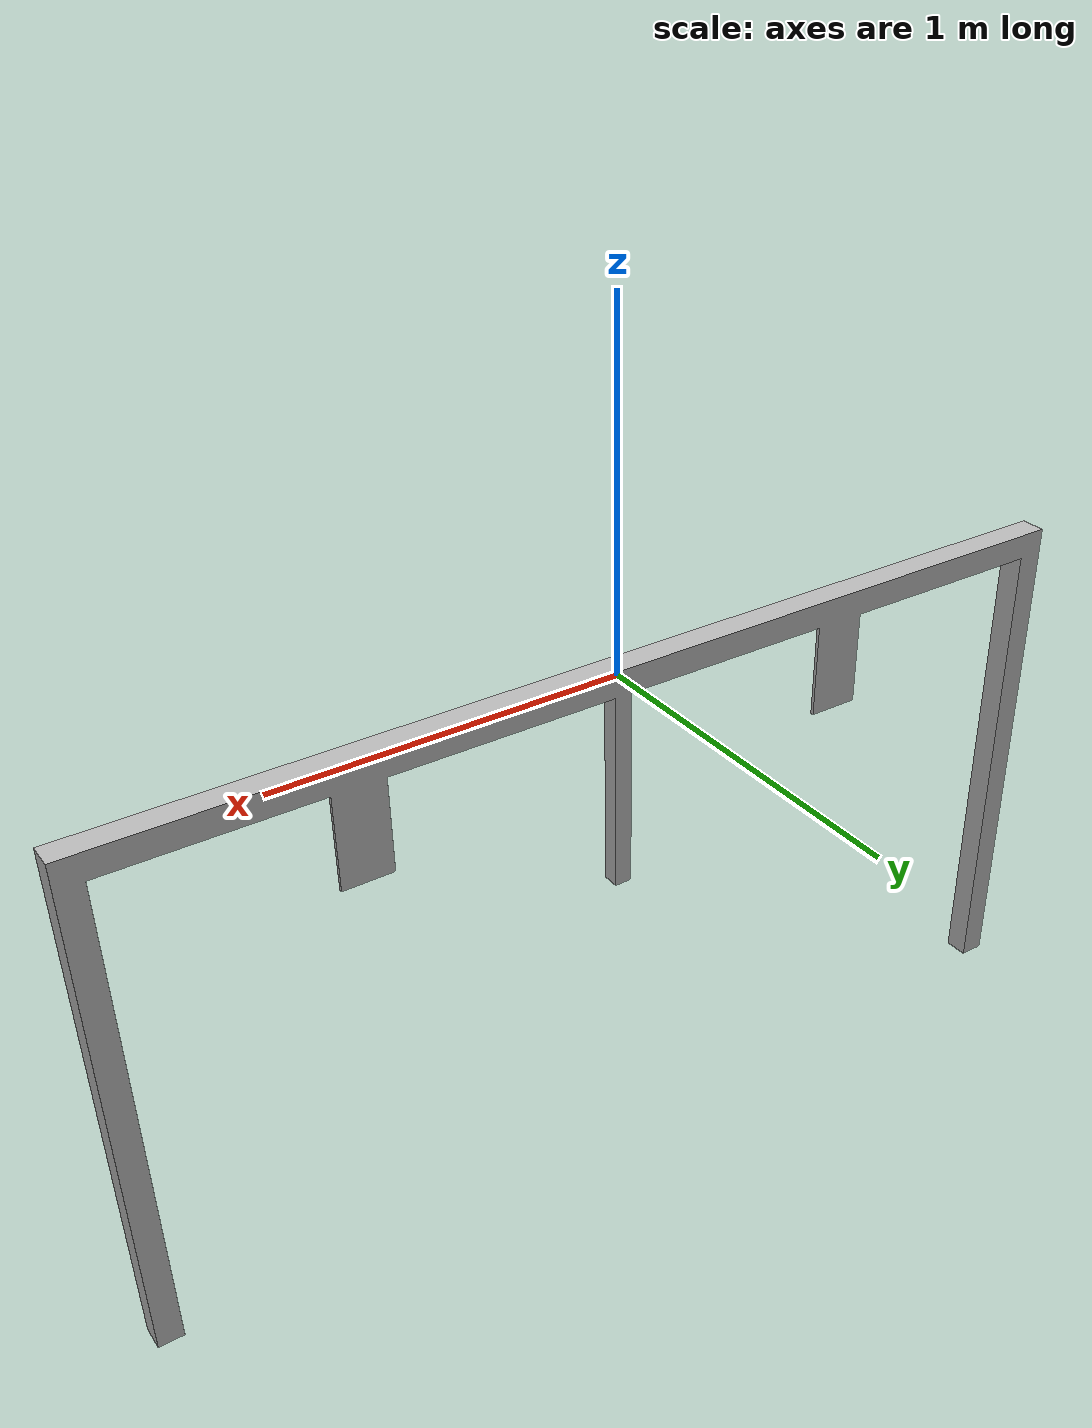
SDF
<?xml version="1.0" ?>
<sdf version="1.5">
  <model name="gate">
    <static>true</static>
    <link name="base_link">

      <collision name="collision">
        <pose>0 0 0 0 0 0</pose>
        <geometry>
          <mesh>
            <uri>model://gate_24/meshes/gate.dae</uri>
          </mesh>
        </geometry>
      </collision>

      <visual name="visual">
        <cast_shadows>true</cast_shadows>
        <pose>0 0 0 0 0 0</pose>
        <geometry>
          <mesh>
            <uri>model://gate_24/meshes/gate.dae</uri>
          </mesh>
        </geometry>
      </visual>
    </link>
  </model>
</sdf>
